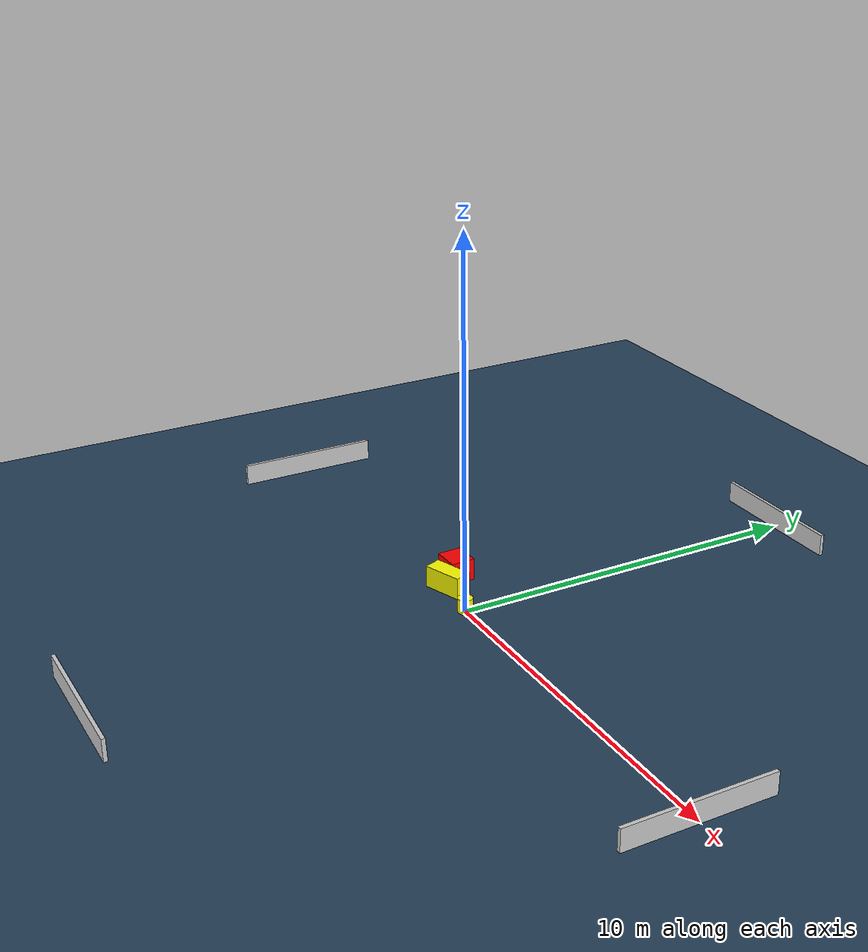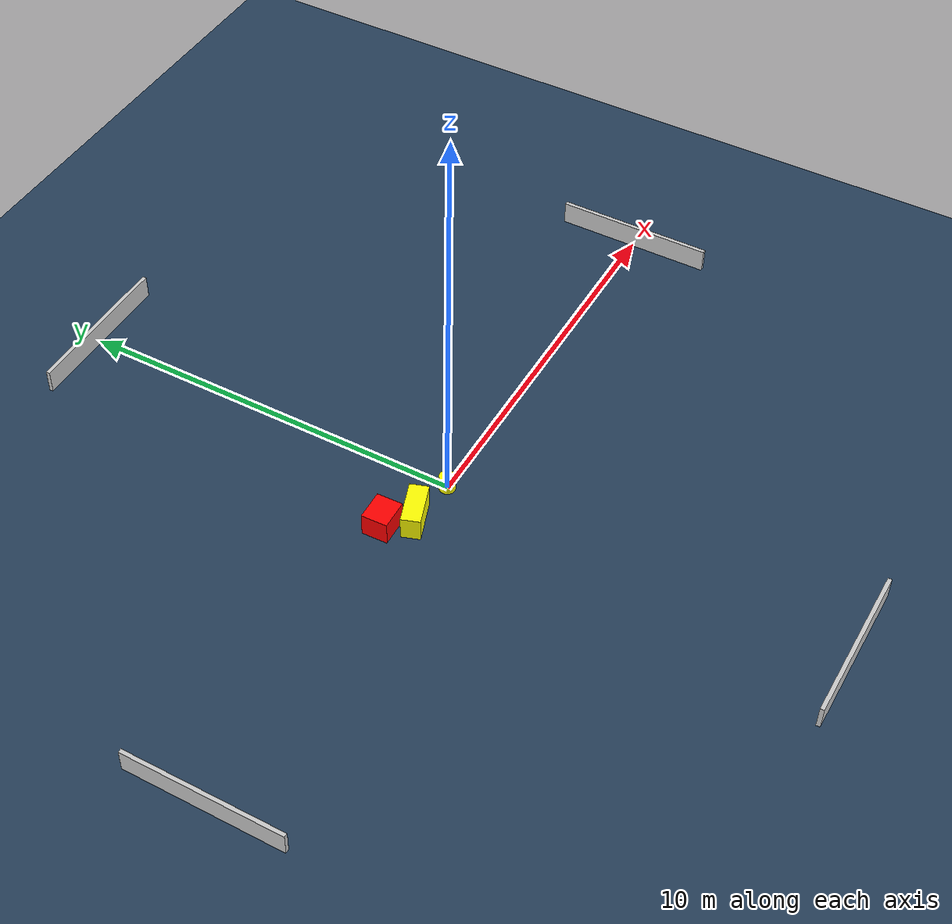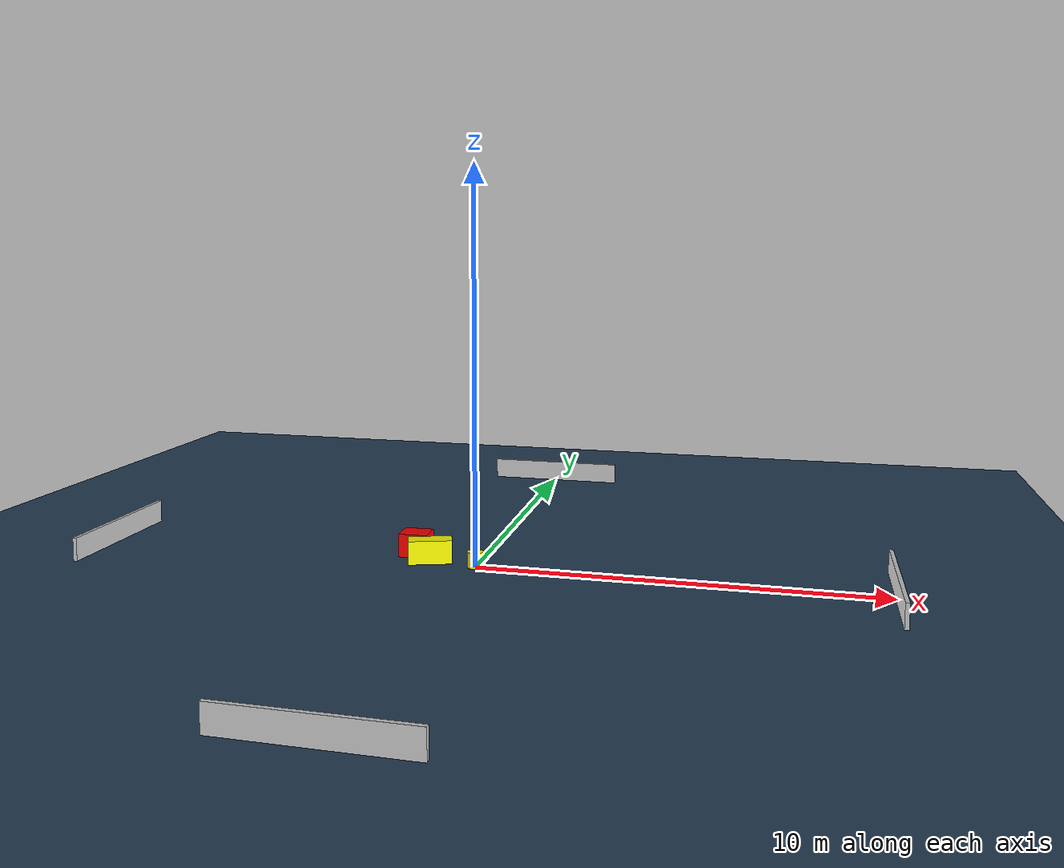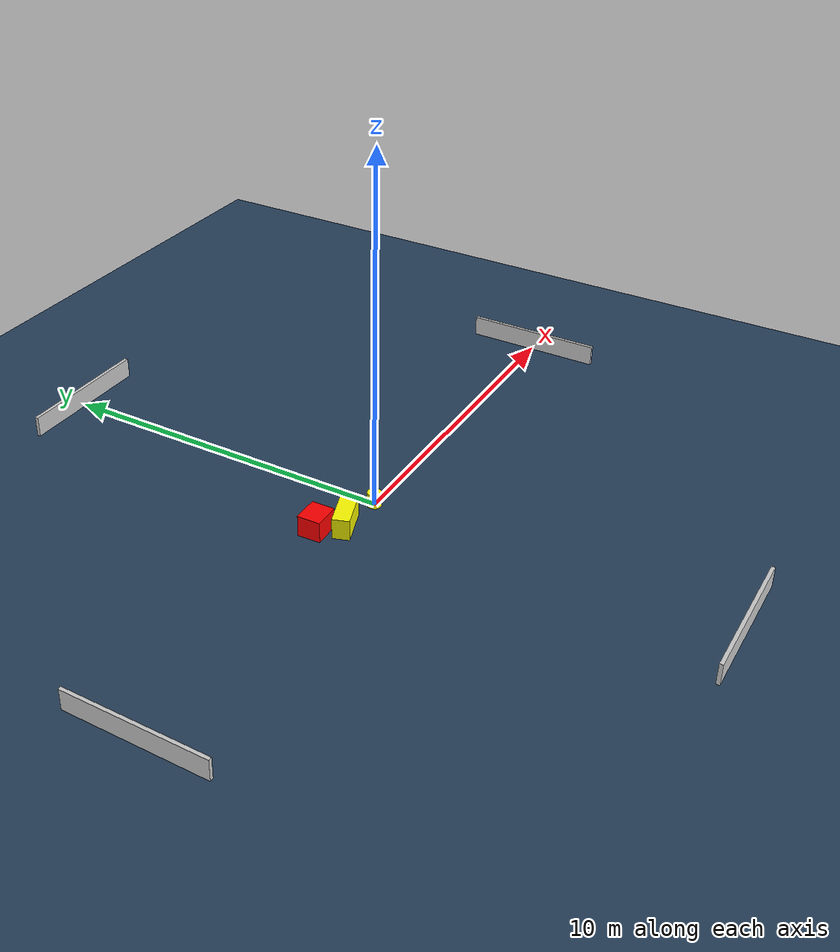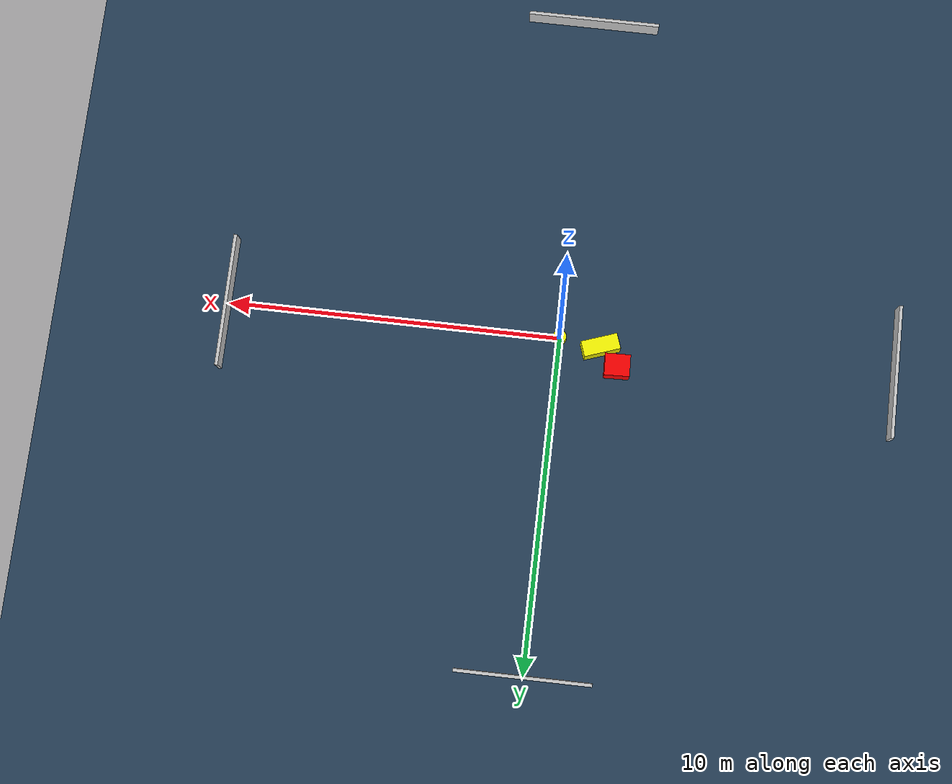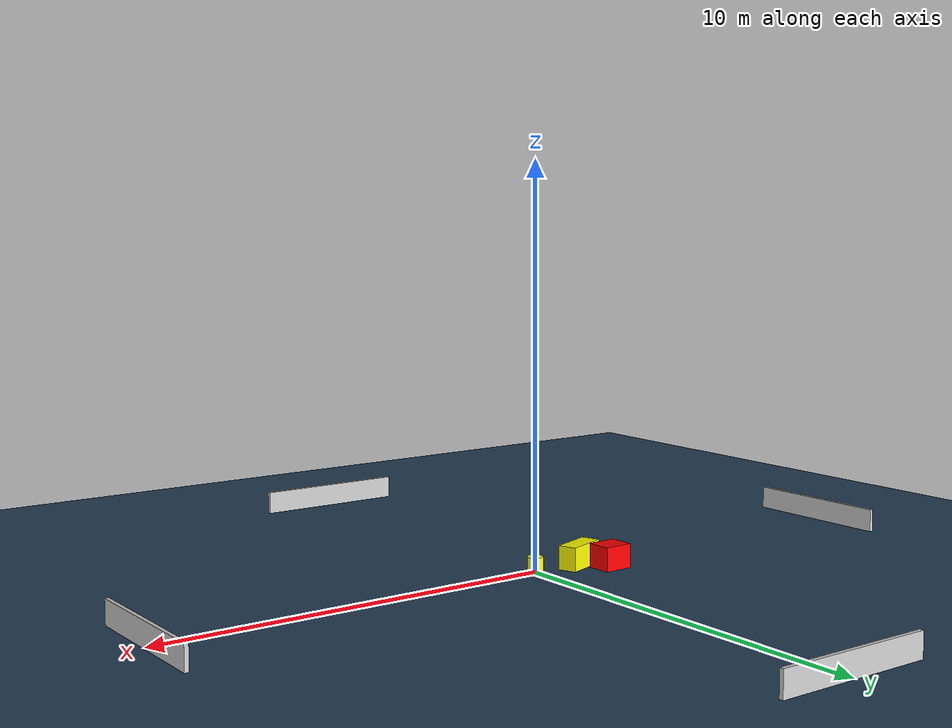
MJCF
<?xml version="1.0" ?>
<mujoco model="generated_environment">
  <option timestep="0.01" integrator="RK4" cone="elliptic"/>
  <default>
    <geom density="1"/>
  </default>
  <asset>
    <texture builtin="gradient" height="3072" name="skybox" rgb1="0.3 0.5 0.7" rgb2="0 0 0" type="skybox" width="512"/>
    <texture builtin="checker" height="300" name="groundplane" rgb1="0.2 0.3 0.4" rgb2="0.1 0.2 0.3" type="2d" width="300"/>
    <material name="groundplane" reflectance="0.2" texrepeat="5 5" texture="groundplane"/>
  </asset>
  <worldbody>
    <light dir="0 0 -1" directional="true" pos="0 0 1.5"/>
    <geom condim="3" friction="0.5 0.005 0.001" material="groundplane" name="floor" pos="0 0 0" size="0 0 0.05" type="plane"/>
    <body name="walls">
      <geom name="wall_1" condim="4" pos="-10.0 0.0 0.3" rgba="0.800000011920929 0.800000011920929 0.800000011920929 1.0" size="0.05 2.0 0.3" type="box"/>
      <geom name="wall_2" condim="4" pos="10.0 0.0 0.3" rgba="0.800000011920929 0.800000011920929 0.800000011920929 1.0" size="0.05 2.0 0.3" type="box"/>
      <geom name="wall_3" condim="4" pos="0.0 -10.0 0.3" rgba="0.800000011920929 0.800000011920929 0.800000011920929 1.0" size="2.0 0.05 0.3" type="box"/>
      <geom name="wall_4" condim="4" pos="0.0 10.0 0.3" rgba="0.800000011920929 0.800000011920929 0.800000011920929 1.0" size="2.0 0.05 0.3" type="box"/>
    </body>
    <body name="robot">
      <joint name="joint_x" type="slide" pos="0 0 0" axis="1 0 0"/>
      <joint name="joint_y" type="slide" pos="0 0 0" axis="0 1 0"/>
      <geom name="robot" type="cylinder" pos="0.0 0.0 0.2" size="0.2 0.2 0.0" mass="5.0" friction="1.0 0.005 0.0001" condim="4" rgba="1.0 1.0 0.0 1.0"/>
    </body>
    <body name="obstacle_1_movable">
      <geom name="obstacle_1_movable" condim="4" pos="-1.2337451665666455 0.15771147119172535 0.3" euler="0 0 199.24785089195697" friction="0.0 0.005 0.001" rgba="1.0 1.0 0.0 1.0" size="0.5537655506217136 0.2370349296272516 0.3" type="box" mass="0.1"/>
      <joint type="free"/>
    </body>
    <body name="obstacle_2_static">
      <geom name="obstacle_2_static" condim="4" pos="-1.7835516979849206 0.6995616281844784 0.3" euler="0 0 181.7234041633028" friction="0.0 0.005 0.001" rgba="1.0 0.0 0.0 1.0" size="0.3770021289633818 0.32716911713707164 0.3" type="box"/>
    </body>
  </worldbody>
  <actuator>
    <motor name="actuator_x" joint="joint_x" gear="1" ctrlrange="-1 1"/>
    <motor name="actuator_y" joint="joint_y" gear="1" ctrlrange="-1 1"/>
  </actuator>
</mujoco>
